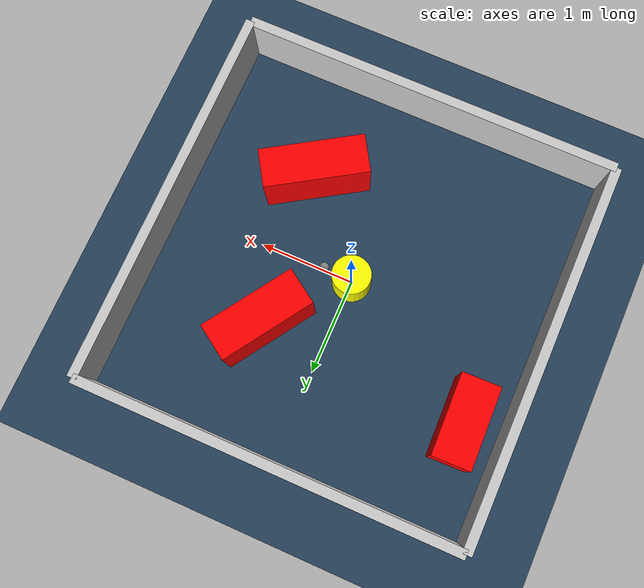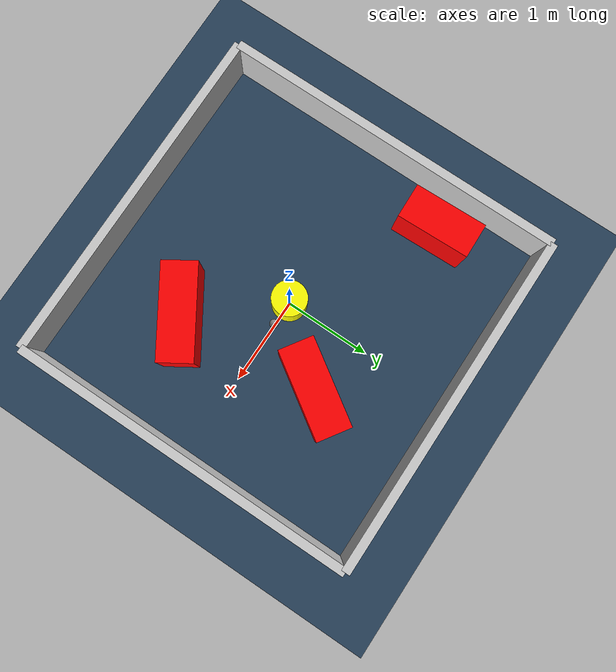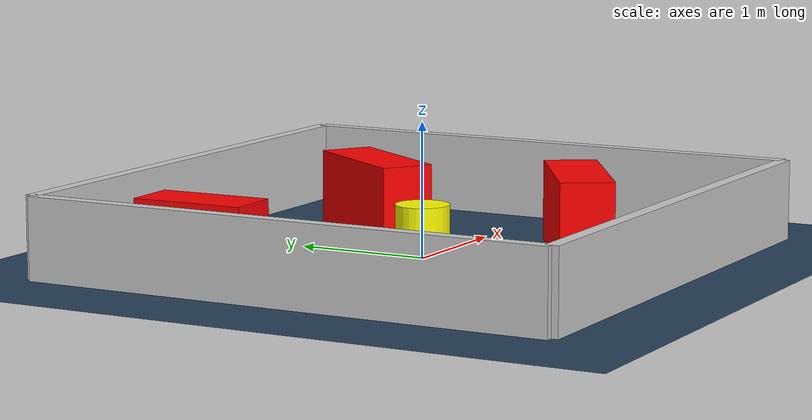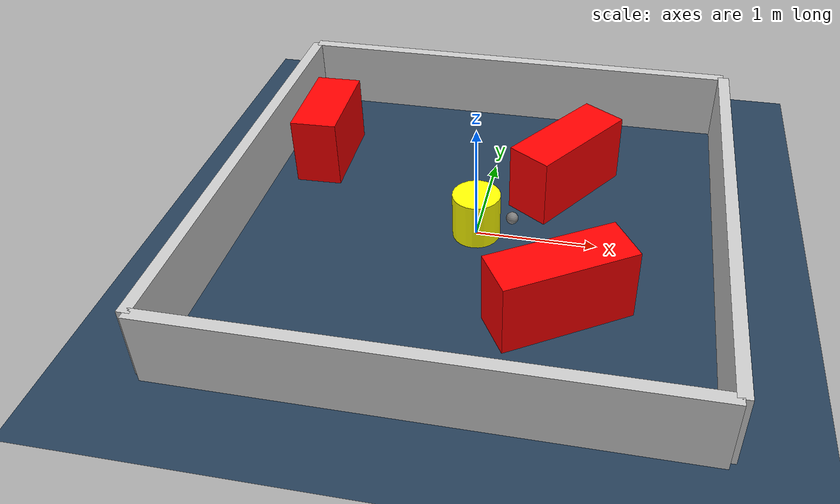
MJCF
<?xml version="1.0" ?>
<mujoco model="generated_environment">
  <option timestep="0.01" integrator="RK4" cone="elliptic"/>
  <default>
    <geom density="1"/>
  </default>
  <asset>
    <texture builtin="gradient" height="3072" rgb1="0.3 0.5 0.7" rgb2="0 0 0" type="skybox" width="512"/>
    <texture builtin="checker" height="300" mark="edge" markrgb="0.8 0.8 0.8" name="groundplane" rgb1="0.2 0.3 0.4" rgb2="0.1 0.2 0.3" type="2d" width="300"/>
    <material name="groundplane" reflectance="0.2" texrepeat="5 5" texture="groundplane" texuniform="true"/>
    <material name="robot" rgba="0.0 1.0 0.0 1"/>
  </asset>
  <worldbody>
    <light dir="0 0 -1" directional="true" pos="0 0 1.5"/>
    <geom condim="4" friction="1.0 0.005 0.001" material="groundplane" name="floor" size="0 0 0.05" type="plane"/>
    <body name="walls">
      <geom name="wall_1" condim="4" pos="-2.0 0.0 0.3" rgba="0.800000011920929 0.800000011920929 0.800000011920929 1.0" size="0.05 2.0 0.3" type="box"/>
      <geom name="wall_2" condim="4" pos="2.0 0.0 0.3" rgba="0.800000011920929 0.800000011920929 0.800000011920929 1.0" size="0.05 2.0 0.3" type="box"/>
      <geom name="wall_3" condim="4" pos="0.0 -2.0 0.3" rgba="0.800000011920929 0.800000011920929 0.800000011920929 1.0" size="2.0 0.05 0.3" type="box"/>
      <geom name="wall_4" condim="4" pos="0.0 2.0 0.3" rgba="0.800000011920929 0.800000011920929 0.800000011920929 1.0" size="2.0 0.05 0.3" type="box"/>
    </body>
    <body name="robot">
      <joint name="joint_x" type="slide" pos="0 0 0" axis="1 0 0"/>
      <joint name="joint_y" type="slide" pos="0 0 0" axis="0 1 0"/>
      <geom name="robot" type="sphere" pos="0.3 0.0 0.2" size="0.05" mass="5." friction="1.0 0.005 0.0001" condim="4" rgba="0.5 0.5 0.5 1.0"/>
      <site name="sensor_ball"/>
    </body>
    <body name="obstacle_movable_1">
      <geom name="obstacle_movable_1" condim="4" pos="0.0 0.0 0.2" euler="0 0 0.0" friction="1.0 0.005 0.001" rgba="1.0 1.0 0.0 1.0" size="0.2 0.2 0.0" type="cylinder" mass="0.1"/>
      <joint type="free"/>
    </body>
    <body name="obstacle_2_static">
      <geom name="obstacle_2_static" condim="4" pos="0.7840775670258526 -0.8761098152205834 0.3" euler="0 0 32.09603276724391" friction="1.0 0.005 0.001" rgba="1 0 0 1" size="0.5388325766264048 0.2 0.3" type="box"/>
    </body>
    <body name="obstacle_3_static">
      <geom name="obstacle_3_static" condim="4" pos="-1.5554617056937072 0.8929576607096774 0.3" euler="0 0 91.58980242325114" friction="1.0 0.005 0.001" rgba="1 0 0 1" size="0.41857787024229925 0.2 0.3" type="box"/>
    </body>
    <body name="obstacle_4_static">
      <geom name="obstacle_4_static" condim="4" pos="0.6566050491596573 0.7514029426796738 0.3" euler="0 0 56.44665041302676" friction="1.0 0.005 0.001" rgba="1 0 0 1" size="0.5091655482098247 0.2 0.3" type="box"/>
    </body>
  </worldbody>
  <actuator>
    <motor name="actuator_x" joint="joint_x" gear="1" ctrlrange="-1 1"/>
    <motor name="actuator_y" joint="joint_y" gear="1" ctrlrange="-1 1"/>
  </actuator>
</mujoco>
